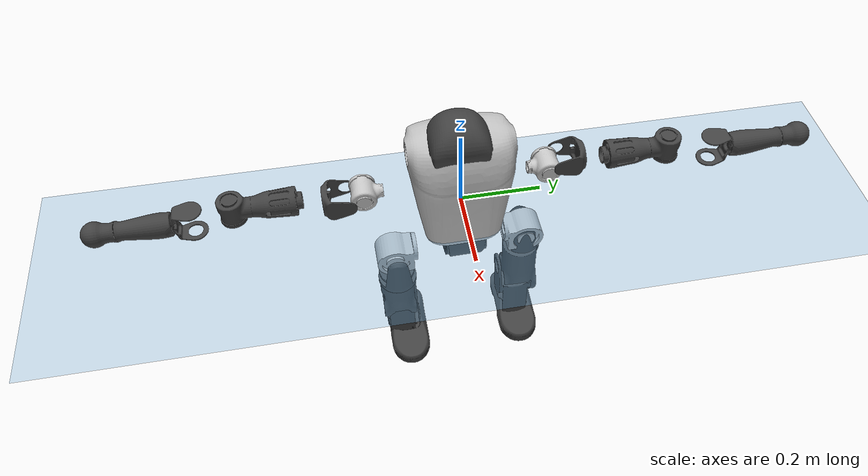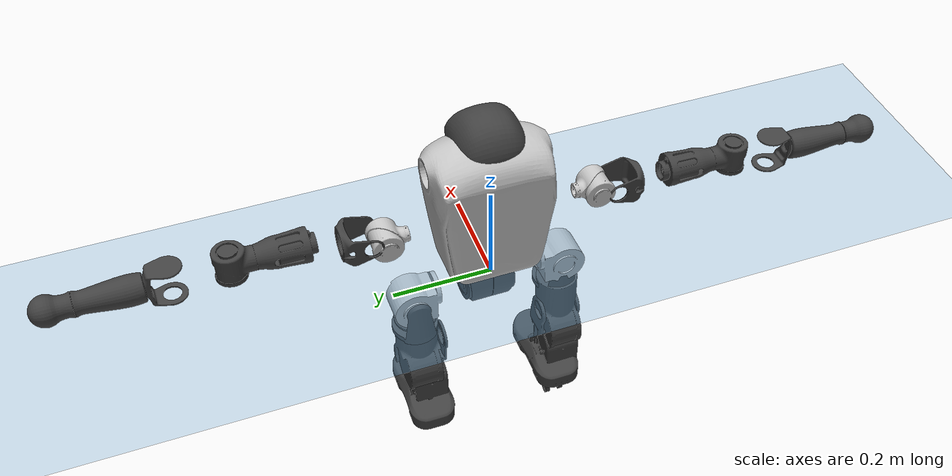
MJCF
<mujoco model="T1">
  <compiler angle="radian" assetdir="assets" balanceinertia="true" inertiafromgeom="false"/>

  <option timestep="0.005" density="1.2" viscosity="2e-05"/>

  <size nkey="1"/>

  <visual>
    <quality shadowsize="8192"/>
    <map shadowclip="0.5"/>
  </visual>

  <default>
    <default class="/">
      <joint armature="0.01" damping="0.01" frictionloss="0.1"/>
      <geom contype="0" conaffinity="0" group="1" solref="-1000 -80"/>
      <site size="0.01 0.005 0.005" group="5"/>
      <general forcelimited="true" biastype="affine" gainprm="25" biasprm="0 -25 -0.6"/>
      <default class="t1">
        <geom rgba="0.25 0.25 0.25 1"/>
        <default class="visual">
          <geom type="mesh" group="2"/>
        </default>
        <default class="collision">
          <geom group="3"/>
        </default>
        <default class="foot">
          <geom size="0.1115 0.05 0.015" type="box" condim="6" group="4" priority="1" solimp="0.015 1 0.015"/>
        </default>
        <default class="reward_collision_sphere">
          <geom group="5" rgba="1 0 0 1"/>
        </default>
      </default>
    </default>
  </default>

  <asset>
    <texture type="skybox" colorspace="auto" name="//unnamed_texture_0" builtin="gradient" rgb1="0.95 0.95 0.95" rgb2="0.95 0.95 0.95" width="100" height="600"/>
    <texture type="2d" colorspace="auto" name="texplane" builtin="checker" rgb1="0.345 0.575 0.748" rgb2="0.345 0.575 0.748" markrgb="1 1 1" width="512" height="512"/>
    <material name="MatPlane" class="/" texture="texplane" texuniform="true" texrepeat="2 2" specular="0.9"/>
    <mesh name="Trunk" class="/" file="Trunk.stl"/>
    <mesh name="H1" class="/" file="H1.stl"/>
    <mesh name="H2" class="/" file="H2.stl"/>
    <mesh name="AL1" class="/" file="AL1.stl"/>
    <mesh name="AL2" class="/" file="AL2.stl"/>
    <mesh name="AL3" class="/" file="AL3.stl"/>
    <mesh name="left_hand_link" class="/" file="left_hand_link.stl"/>
    <mesh name="AR1" class="/" file="AR1.stl"/>
    <mesh name="AR2" class="/" file="AR2.stl"/>
    <mesh name="AR3" class="/" file="AR3.stl"/>
    <mesh name="right_hand_link" class="/" file="right_hand_link.stl"/>
    <mesh name="Waist" class="/" file="Waist.stl"/>
    <mesh name="Hip_Pitch_Left" class="/" file="Hip_Pitch_Left.stl"/>
    <mesh name="Hip_Roll_Left" class="/" file="Hip_Roll_Left.stl"/>
    <mesh name="Hip_Yaw_Left" class="/" file="Hip_Yaw_Left.stl"/>
    <mesh name="Shank_Left" class="/" file="Shank_Left.stl"/>
    <mesh name="Ankle_Cross_Left" class="/" file="Ankle_Cross_Left.stl"/>
    <mesh name="left_foot_link" class="/" file="left_foot_link.stl"/>
    <mesh name="Hip_Pitch_Right" class="/" file="Hip_Pitch_Right.stl"/>
    <mesh name="Hip_Roll_Right" class="/" file="Hip_Roll_Right.stl"/>
    <mesh name="Hip_Yaw_Right" class="/" file="Hip_Yaw_Right.stl"/>
    <mesh name="Shank_Right" class="/" file="Shank_Right.stl"/>
    <mesh name="Ankle_Cross_Right" class="/" file="Ankle_Cross_Right.stl"/>
    <mesh name="right_foot_link" class="/" file="right_foot_link.stl"/>
  </asset>

  <worldbody>
    <geom name="floor" class="/" size="100 100 0.125" type="plane" group="0" material="MatPlane"/>
    <light name="toplight_shadow" class="/" pos="0 0 5" dir="0.0990148 0.0990148 -0.990148" type="directional" ambient="0.04 0.04 0.04" diffuse="0.55 0.55 0.55" specular="0.12 0.12 0.12"/>
    <light name="toplight_fill" class="/" pos="0 0 5" dir="0.0990148 0.0990148 -0.990148" type="directional" castshadow="false" ambient="0.04 0.04 0.04" diffuse="0.3 0.3 0.3" specular="0.08 0.08 0.08"/>
    <body name="trunk" childclass="t1" pos="0.000855974 -0.0116605 0.0160831" quat="0.999964 0.00307878 0.00578191 0.00545274">
      <inertial pos="0.0483587 -0.000145286 0.0503466" quat="0.999963 2.38192e-05 -0.0085808 0.000828905" mass="14.0081" diaginertia="0.0895912 0.953281 0.00260769"/>
      <joint name="//unnamed_joint_0" type="free" armature="0" damping="0" frictionloss="0"/>
      <geom name="//unnamed_geom_1" class="visual" rgba="0.76 0.76 0.76 1" mesh="Trunk"/>
      <geom name="//unnamed_geom_2" class="collision" size="0.077255 0.103007 0.15451" pos="0.0563324 0 0.0612766" type="box"/>
      <geom name="//unnamed_geom_3" class="reward_collision_sphere" size="0.118458" pos="0.0563324 0 0.0510639"/>
      <geom name="//unnamed_geom_4" class="reward_collision_sphere" size="0.015451" pos="0.0563324 0.139459 0"/>
      <geom name="//unnamed_geom_5" class="reward_collision_sphere" size="0.015451" pos="0.0563324 -0.139459 0"/>
      <geom name="//unnamed_geom_6" class="reward_collision_sphere" size="0.015451" pos="0.0563324 0.175554 0.091915"/>
      <geom name="//unnamed_geom_7" class="reward_collision_sphere" size="0.015451" pos="0.0563324 -0.175554 0.091915"/>
      <site name="imu" pos="0.0794109 0.0198149 0.00711017" size="0.0103007"/>
      <camera name="track" pos="0 -3.28138 0" quat="0.707107 0.707107 0 0" mode="trackcom"/>
      <camera name="ego_camera" pos="0.114543 0 0.214468" quat="-0.5 -0.5 0.5 0.5"/>
      <body name="H1" pos="0.046851 -0.000696526 0.111843" quat="0.99997 -0.00625659 -0.00111402 -0.00432955">
        <inertial pos="-0.0140901 -0.0121757 0.0226743" quat="0.771726 -0.00457704 -0.00312322 0.635931" mass="0.38626" diaginertia="0.000142805 0.00201771 5.58546e-06"/>
        <joint name="AAHead_yaw" pos="0 0 0" axis="0.0119139 -0.0119695 0.999857" stiffness="0.00403649" range="-1.21662 1.71124" armature="0.0085367" damping="0.0531135" frictionloss="0.0590238"/>
        <geom name="//unnamed_geom_8" class="visual" mesh="H1"/>
        <body name="H2" pos="0.00669937 -0.00695279 0.0189458" quat="0.999966 0.000229019 0.00828521 -0.00016647">
          <inertial pos="0.00188299 -0.00341463 0.0514611" quat="0.988082 0.106694 -0.0752018 -0.0815732" mass="0.823062" diaginertia="0.00169263 0.0262538 5.94901e-05"/>
          <joint name="Head_pitch" pos="0 0 0" axis="0.0486837 -0.996934 0.0612548" stiffness="0.0474812" range="-0.965519 0.0295521" armature="0.00318252" damping="0" frictionloss="0.0175189"/>
          <geom name="//unnamed_geom_9" class="visual" mesh="H2"/>
          <geom name="//unnamed_geom_10" class="collision" size="0.0824053" pos="0.00938873 0 0.0561703"/>
          <geom name="//unnamed_geom_11" class="reward_collision_sphere" size="0.092706" pos="0.0187775 0 0.0510639"/>
        </body>
      </body>
      <body name="AL1" pos="0.0378232 0.163398 0.1015" quat="0.999998 -0.00161024 0.00105941 -0.000838055">
        <inertial pos="0.0162337 0.0827786 0.00964878" quat="0.543862 0.512319 -0.489005 0.45013" mass="0.654883" diaginertia="0.00103577 0.0136326 1.21294e-05"/>
        <joint name="Left_Shoulder_Pitch" pos="0 0 0" axis="0.0143086 0.999837 0.0109855" range="-3.20472 1.21076" armature="0.008017" damping="0" frictionloss="0.148386"/>
        <geom name="//unnamed_geom_12" class="visual" rgba="0.76 0.76 0.76 1" mesh="AL1"/>
        <body name="AL2" pos="-0.000463383 0.0771358 0.0162948" quat="0.999968 0.00736705 -0.00162998 0.00247127">
          <inertial pos="0.0120008 0.0642041 0.0147098" quat="0.449313 0.514581 -0.507992 0.524659" mass="0.142641" diaginertia="0.000310849 0.00459557 5.5002e-06"/>
          <joint name="Left_Shoulder_Roll" pos="0 0 0" axis="-0.996745 0.0805568 0.00304721" range="-1.59731 1.86672" armature="0.00751213" damping="0" frictionloss="0.18549"/>
          <geom name="//unnamed_geom_13" class="visual" mesh="AL2"/>
          <body name="AL3" pos="0.0164028 0.109126 0.00487851" quat="0.999998 -0.00100204 0.00135824 -0.00109983">
            <inertial pos="0.00559048 0.14044 -0.0149693" quat="0.70735 0.70686 -0.0022509 -0.000247077" mass="1.15668" diaginertia="0.00829107 0.159069 2.4325e-05"/>
            <joint name="Left_Elbow_Pitch" pos="0 0 0" axis="0.0182682 -0.997088 -0.0740338" range="-2.38347 2.25594" armature="0.0145336" damping="0.0155007" frictionloss="0.0568887"/>
            <geom name="//unnamed_geom_14" class="visual" mesh="AL3"/>
            <geom name="//unnamed_geom_15" class="collision" size="0.030902 0.077255" pos="0 0.0820344 0" quat="0.707105 0.707108 0 0" type="cylinder"/>
            <geom name="//unnamed_geom_16" class="reward_collision_sphere" size="0.0370824"/>
            <body name="left_hand_link" pos="0.0118037 0.256897 -0.0170959" quat="0.999992 0.00306967 0.00272311 0.000151939">
              <inertial pos="0.000493774 0.170285 -0.0123929" quat="0.712332 0.701763 0.00683861 0.00804585" mass="0.314063" diaginertia="0.00566594 0.064827 5.93305e-06"/>
              <joint name="Left_Elbow_Yaw" pos="0 0 0" axis="-0.0639878 -0.0370661 0.997262" stiffness="0.063232" range="-2.59151 -0.0471595" armature="0.0084537" damping="0" frictionloss="0.043796"/>
              <geom name="//unnamed_geom_17" class="visual" mesh="left_hand_link"/>
              <geom name="//unnamed_geom_18" class="collision" size="0.030902 0.0901309" pos="0 0.213289 0" quat="0.707105 0.707108 0 0" type="cylinder"/>
              <geom name="//unnamed_geom_19" class="reward_collision_sphere" size="0.0515033"/>
              <geom name="//unnamed_geom_20" class="reward_collision_sphere" size="0.0360523" pos="0 0.180476 0"/>
              <geom name="//unnamed_geom_21" class="reward_collision_sphere" size="0.0360523" pos="0 0.352748 0"/>
            </body>
          </body>
        </body>
      </body>
      <body name="AR1" pos="0.0407073 -0.177997 0.0975718" quat="0.999969 0.000841684 0.00376649 -0.00688506">
        <inertial pos="-0.00120173 -0.0643817 -0.00620529" quat="0.534372 0.494689 -0.509571 0.458332" mass="0.658449" diaginertia="0.00128819 0.0167037 1.14214e-05"/>
        <joint name="Right_Shoulder_Pitch" pos="0 0 0" axis="0.035613 -0.999364 0.00175162" stiffness="0.0729684" range="-1.23007 3.07626" armature="0.0141473" damping="0.0801201" frictionloss="0.0818733"/>
        <geom name="//unnamed_geom_22" class="visual" rgba="0.76 0.76 0.76 1" mesh="AR1"/>
        <body name="AR2" pos="0.00200264 -0.084699 -0.00742932" quat="0.999984 0.0039628 0.00389813 0.00115386">
          <inertial pos="0.0123805 -0.0629037 -0.0120406" quat="0.505785 0.487411 -0.520691 0.485277" mass="0.206083" diaginertia="0.000229283 0.00434082 7.23209e-06"/>
          <joint name="Right_Shoulder_Roll" pos="0 0 0" axis="-0.999985 -0.00539892 3.93185e-05" stiffness="0.0164135" range="-1.87914 1.54579" armature="0.00931098" damping="0" frictionloss="0.0273361"/>
          <geom name="//unnamed_geom_23" class="visual" mesh="AR2"/>
          <body name="AR3" pos="-0.00623648 -0.113354 0.00763915" quat="0.999994 0.00033081 -0.0012376 -0.00321298">
            <inertial pos="0.0166003 -0.141989 -0.00624641" quat="0.711099 0.700364 -0.00256276 0.0618208" mass="0.832652" diaginertia="0.0100443 0.166979 2.13805e-05"/>
            <joint name="Right_Elbow_Pitch" pos="0 0 0" axis="-0.0196995 0.998694 0.0471322" stiffness="0.0862105" range="-2.25716 2.47007" armature="0.0178128" damping="0.0181999" frictionloss="0.1236"/>
            <geom name="//unnamed_geom_24" class="visual" mesh="AR3"/>
            <geom name="//unnamed_geom_25" class="collision" size="0.030902 0.077255" pos="0 -0.0820344 0" quat="0.707105 0.707108 0 0" type="cylinder"/>
            <geom name="//unnamed_geom_26" class="reward_collision_sphere" size="0.0370824"/>
            <body name="right_hand_link" pos="0.00403689 -0.23906 -0.0166415" quat="1 -1.09729e-05 2.65713e-05 4.74717e-06">
              <inertial pos="0.0117818 -0.192799 0.00765038" quat="0.707826 0.70546 -0.0352231 0.00829347" mass="0.397205" diaginertia="0.00598061 0.120021 7.35757e-06"/>
              <joint name="Right_Elbow_Yaw" pos="0 0 0" axis="0.0365864 0.000882901 0.99933" stiffness="0.0364313" range="0.0745715 2.45108" armature="0.0148512" damping="0.0521994" frictionloss="0.0861712"/>
              <geom name="//unnamed_geom_27" class="visual" mesh="right_hand_link"/>
              <geom name="//unnamed_geom_28" class="collision" size="0.030902 0.0901309" pos="0 -0.213289 0" quat="0.707105 0.707108 0 0" type="cylinder"/>
              <geom name="//unnamed_geom_29" class="reward_collision_sphere" size="0.0515033"/>
              <geom name="//unnamed_geom_30" class="reward_collision_sphere" size="0.0360523" pos="0 -0.180476 0"/>
              <geom name="//unnamed_geom_31" class="reward_collision_sphere" size="0.0360523" pos="0 -0.352748 0"/>
            </body>
          </body>
        </body>
      </body>
      <body name="Waist" pos="0.0578425 0.00540809 -0.0707308" quat="1 -0.000175242 -1.30255e-05 3.33771e-06">
        <inertial pos="-0.0083459 -0.00231377 -0.00499862" quat="0.982502 0.00224194 -0.185908 0.0110836" mass="2.62228" diaginertia="0.00413827 0.0470648 0.000173579"/>
        <joint name="Waist" pos="0 0 0" axis="0.0295352 -0.0155773 0.999442" stiffness="0.0560894" range="-1.31406 1.36781" armature="0.0101272" damping="0.0878035" frictionloss="0.105792"/>
        <geom name="//unnamed_geom_32" class="visual" mesh="Waist"/>
        <body name="Hip_Pitch_Left" pos="-0.00257648 0.156704 -0.014731" quat="1 -0.000155574 -3.57432e-05 -2.16431e-06">
          <inertial pos="0.0121537 -0.0143833 0.00775563" quat="0.976179 0.214875 0.00698678 -0.0292247" mass="0.900255" diaginertia="0.00112991 0.0167093 4.06403e-05"/>
          <joint name="Left_Hip_Pitch" pos="0 0 0" axis="0.0260527 0.998493 0.0483045" stiffness="0.0689403" range="-2.07678 1.52469" armature="0.0109001" damping="0.0802211" frictionloss="0.176328"/>
          <geom name="//unnamed_geom_33" class="visual" rgba="0.76 0.76 0.76 1" mesh="Hip_Pitch_Left"/>
          <body name="Hip_Roll_Left" pos="-0.0093445 -0.00144437 -0.010214" quat="1 0.000111825 0.000429548 0.000284745">
            <inertial pos="0.00405671 0.00579028 -0.0277498" quat="0.706503 -0.00346475 0.0404937 0.706542" mass="0.370516" diaginertia="0.00114637 0.0131264 1.46392e-05"/>
            <joint name="Left_Hip_Roll" pos="0 0 0" axis="-0.999231 0.0100642 0.0378866" range="-1.8203 0.205775" armature="0.0108618" damping="0" frictionloss="0.167214"/>
            <geom name="//unnamed_geom_34" class="visual" mesh="Hip_Roll_Left"/>
            <geom name="//unnamed_geom_35" class="reward_collision_sphere" size="0.0566537"/>
            <body name="Hip_Yaw_Left" pos="0.0133836 -0.00534206 -0.0589441" quat="1 -0.000232759 -4.19633e-05 -0.000476216">
              <inertial pos="-0.0124387 -0.00185761 -0.0299016" quat="0.712297 -0.00159699 -0.0398762 0.700743" mass="2.66107" diaginertia="0.0142576 0.266138 8.6571e-05"/>
              <joint name="Left_Hip_Yaw" pos="0 0 0" axis="0.0060149 0.064324 -0.997911" stiffness="0.087333" range="-0.980571 0.745228" armature="0.0172689" damping="0.0660071" frictionloss="0.179583"/>
              <geom name="//unnamed_geom_36" class="visual" mesh="Hip_Yaw_Left"/>
              <geom name="//unnamed_geom_37" class="collision" size="0.0515033 0.0824053" type="cylinder"/>
              <body name="Shank_Left" pos="-0.00209227 -0.0155286 -0.0827113" quat="0.999965 0.00208236 -0.00734402 -0.00334423">
                <inertial pos="-0.0155999 0.0179555 -0.0551455" quat="0.996071 0.0145827 -0.0842894 0.0229249" mass="1.69363" diaginertia="0.0183714 0.374986 5.45899e-05"/>
                <joint name="Left_Knee_Pitch" pos="0 0 0" axis="0.0285034 0.998685 0.0426089" range="0.132944 2.34628" armature="0.00392374" damping="0.0426871" frictionloss="0.182344"/>
                <geom name="//unnamed_geom_38" class="visual" mesh="Shank_Left"/>
                <geom name="//unnamed_geom_39" class="collision" size="0.0515033 0.077255" pos="0 0 -0.0612766" type="cylinder"/>
                <geom name="//unnamed_geom_40" class="reward_collision_sphere" size="0.0669543"/>
                <body name="Ankle_Cross_Left" pos="0.0165308 0.00813775 -0.147485" quat="1 9.96781e-07 -4.68197e-05 -0.000109184">
                  <inertial pos="-0.0071129 0.00367153 -0.00684899" quat="0.380822 0.532639 0.598509 0.461581" mass="0.0654247" diaginertia="2.08508e-05 0.000290788 3.53274e-07"/>
                  <joint name="Left_Ankle_Pitch" pos="0 0 0" axis="-0.0141163 0.998418 0.0544318" stiffness="0.00101176" range="-0.892035 0.644026" armature="0.0102311" damping="0" frictionloss="0.111311"/>
                  <geom name="//unnamed_geom_41" class="visual" mesh="Ankle_Cross_Left"/>
                  <body name="left_foot_link" pos="-0.0127143 -0.00214151 -0.0105801" quat="0.999983 -0.00254184 0.000495219 -0.00513472">
                    <inertial pos="-0.00299016 0.000411047 -0.0220001" quat="0.00107644 0.620597 -0.000935951 0.784128" mass="0.943122" diaginertia="0.00250904 0.0324817 9.44226e-05"/>
                    <joint name="Left_Ankle_Roll" pos="0 0 0" axis="-0.998518 -0.012917 0.0528681" range="-0.195223 0.256711" armature="0.0100538" damping="0" frictionloss="0.101732"/>
                    <geom name="//unnamed_geom_42" class="visual" mesh="left_foot_link"/>
                    <geom name="left_foot" class="foot" size="0.0485798 0.0207709 0.00992008" pos="0.00938873 0 -0.00765958"/>
                    <geom name="//unnamed_geom_44" class="reward_collision_sphere" size="0.0535635" pos="0.00938873 0 -0.00765958"/>
                    <geom name="//unnamed_geom_45" class="reward_collision_sphere" size="0.030902" pos="0.089193 -0.0377358 -0.00765958"/>
                    <geom name="//unnamed_geom_46" class="reward_collision_sphere" size="0.030902" pos="-0.0657211 -0.0377358 -0.00765958"/>
                    <site name="left_foot" class="foot" pos="0.00938873 0 -0.00765958" size="0.0103007"/>
                  </body>
                </body>
              </body>
            </body>
          </body>
        </body>
        <body name="Hip_Pitch_Right" pos="0.012979 -0.175243 -0.0147197" quat="0.999969 -0.00348034 0.00680839 -0.00191883">
          <inertial pos="0.00191512 0.0291939 -0.0158203" quat="0.963972 -0.262554 0.0409819 -0.0119674" mass="1.01685" diaginertia="0.00114005 0.015887 3.46565e-05"/>
          <joint name="Right_Hip_Pitch" pos="0 0 0" axis="0.0103714 -0.999881 0.0114571" stiffness="0.054291" range="-1.79679 2.09247" armature="0.00954778" damping="0" frictionloss="0.0180452"/>
          <geom name="//unnamed_geom_47" class="visual" rgba="0.76 0.76 0.76 1" mesh="Hip_Pitch_Right"/>
          <body name="Hip_Roll_Right" pos="0.0150738 0.00289608 -0.0235453" quat="0.999999 0.000448017 0.000777688 0.000933841">
            <inertial pos="0.00896368 -0.000304565 -0.0370775" quat="0.707907 -0.00869001 -0.00542171 0.706231" mass="0.421562" diaginertia="0.00156568 0.0162813 1.62523e-05"/>
            <joint name="Right_Hip_Roll" pos="0 0 0" axis="-0.998717 0.0447553 -0.0237063" range="-0.43425 1.73585" armature="0.0105878" damping="0.0572474" frictionloss="0.0314024"/>
            <geom name="//unnamed_geom_48" class="visual" mesh="Hip_Roll_Right"/>
            <geom name="//unnamed_geom_49" class="reward_collision_sphere" size="0.0566537"/>
            <body name="Hip_Yaw_Right" pos="-0.0134759 -0.00014539 -0.0561152" quat="1 -0.000114435 0.000188977 -6.70849e-05">
              <inertial pos="0.00745079 -0.0175731 -0.051425" quat="0.716501 -0.0386064 -0.0238628 0.696108" mass="3.17528" diaginertia="0.0185379 0.330806 0.000121124"/>
              <joint name="Right_Hip_Yaw" pos="0 0 0" axis="-0.0154914 0.0382947 -0.999146" stiffness="0.0278803" range="-1.11011 0.928737" armature="0.0111427" damping="0" frictionloss="0.0994947"/>
              <geom name="//unnamed_geom_50" class="visual" mesh="Hip_Yaw_Right"/>
              <geom name="//unnamed_geom_51" class="collision" size="0.0515033 0.0824053" type="cylinder"/>
              <body name="Shank_Right" pos="-0.00986769 0.00265957 -0.0851431" quat="0.999999 0.00108995 -0.00025579 0.000863426">
                <inertial pos="0.0125725 -0.00840574 -0.050641" quat="0.997636 -0.0591863 -0.0201924 0.0284775" mass="2.00269" diaginertia="0.0332303 0.420615 7.92563e-05"/>
                <joint name="Right_Knee_Pitch" pos="0 0 0" axis="-0.000478945 -0.999989 -0.00476616" range="-2.33564 0.300815" armature="0.00995102" damping="0" frictionloss="0.166059"/>
                <geom name="//unnamed_geom_52" class="visual" mesh="Shank_Right"/>
                <geom name="//unnamed_geom_53" class="collision" size="0.0515033 0.077255" pos="0 0 -0.0612766" type="cylinder"/>
                <geom name="//unnamed_geom_54" class="reward_collision_sphere" size="0.0669543"/>
                <body name="Ankle_Cross_Right" pos="0.010298 0.00947342 -0.128364" quat="0.999992 0.000490655 0.00141181 -0.00371192">
                  <inertial pos="-0.00125669 0.010245 -0.000850367" quat="0.404951 0.584477 0.539467 0.450973" mass="0.0984621" diaginertia="2.2664e-05 0.00035083 4.28979e-07"/>
                  <joint name="Right_Ankle_Pitch" pos="0 0 0" axis="-0.000754327 -0.999998 0.00182012" range="-0.708394 0.639781" armature="0.0125768" damping="0" frictionloss="0.0992434"/>
                  <geom name="//unnamed_geom_55" class="visual" mesh="Ankle_Cross_Right"/>
                  <body name="right_foot_link" pos="0.00481474 0.00530709 -0.0175821" quat="0.999999 -0.000810201 0.000608201 0.000134025">
                    <inertial pos="-0.00373578 0.00843579 -0.0216095" quat="0.0237561 0.624916 0.00532024 0.780312" mass="0.796152" diaginertia="0.00199844 0.0323619 8.23852e-05"/>
                    <joint name="Right_Ankle_Roll" pos="0 0 0" axis="-0.999996 0.00103877 0.00262703" range="-0.303719 0.395265" armature="0.00835592" damping="0.0462162" frictionloss="0.0110587"/>
                    <geom name="//unnamed_geom_56" class="visual" mesh="right_foot_link"/>
                    <geom name="right_foot" class="foot" size="0.0610605 0.0850202 0.00508469" pos="0.00938873 0 -0.00765958"/>
                    <geom name="//unnamed_geom_58" class="reward_collision_sphere" size="0.0412027"/>
                    <geom name="//unnamed_geom_59" class="reward_collision_sphere" size="0.030902" pos="0.00938873 0 -0.00765958"/>
                    <geom name="//unnamed_geom_60" class="reward_collision_sphere" size="0.030902" pos="0.089193 0.0377358 -0.00765958"/>
                    <geom name="//unnamed_geom_61" class="reward_collision_sphere" size="0.030902" pos="-0.0657211 0.0377358 -0.00765958"/>
                    <site name="right_foot" class="foot" pos="0.00938873 0 -0.00765958" size="0.0103007"/>
                  </body>
                </body>
              </body>
            </body>
          </body>
        </body>
      </body>
    </body>
  </worldbody>

  <contact>
    <pair class="/" geom1="floor" geom2="left_foot" name="//unnamed_contact_0"/>
    <pair class="/" geom1="floor" geom2="right_foot" name="//unnamed_contact_1"/>
  </contact>

  <actuator>
    <general name="AAHead_yaw" class="/" joint="AAHead_yaw" forcerange="-7.14367 7.14367" gainprm="17.1747" biasprm="0 -17.1747 -0.604212"/>
    <general name="Head_pitch" class="/" joint="Head_pitch" forcerange="-4.64799 4.64799" gainprm="17.1747" biasprm="0 -17.1747 -0.604212"/>
    <general name="Left_Shoulder_Pitch" class="/" joint="Left_Shoulder_Pitch" forcerange="-24.9009 24.9009" gainprm="17.1747" biasprm="0 -17.1747 -0.604212"/>
    <general name="Left_Shoulder_Roll" class="/" joint="Left_Shoulder_Roll" forcerange="-13.7498 13.7498" gainprm="17.1747" biasprm="0 -17.1747 -0.604212"/>
    <general name="Left_Elbow_Pitch" class="/" joint="Left_Elbow_Pitch" forcerange="-28.6295 28.6295" gainprm="17.1747" biasprm="0 -17.1747 -0.604212"/>
    <general name="Left_Elbow_Yaw" class="/" joint="Left_Elbow_Yaw" forcerange="-18.1365 18.1365" gainprm="17.1747" biasprm="0 -17.1747 -0.604212"/>
    <general name="Right_Shoulder_Pitch" class="/" joint="Right_Shoulder_Pitch" forcerange="-14.4678 14.4678" gainprm="17.1747" biasprm="0 -17.1747 -0.604212"/>
    <general name="Right_Shoulder_Roll" class="/" joint="Right_Shoulder_Roll" forcerange="-10.8738 10.8738" gainprm="17.1747" biasprm="0 -17.1747 -0.604212"/>
    <general name="Right_Elbow_Pitch" class="/" joint="Right_Elbow_Pitch" forcerange="-18.8154 18.8154" gainprm="17.1747" biasprm="0 -17.1747 -0.604212"/>
    <general name="Right_Elbow_Yaw" class="/" joint="Right_Elbow_Yaw" forcerange="-16.4824 16.4824" gainprm="17.1747" biasprm="0 -17.1747 -0.604212"/>
    <general name="Waist" class="/" joint="Waist" forcerange="-34.306 34.306" gainprm="17.1747" biasprm="0 -17.1747 -0.604212"/>
    <general name="Left_Hip_Pitch" class="/" joint="Left_Hip_Pitch" forcerange="-46.7414 46.7414" gainprm="17.1747" biasprm="0 -17.1747 -0.604212"/>
    <general name="Left_Hip_Roll" class="/" joint="Left_Hip_Roll" forcerange="-11.7542 11.7542" gainprm="17.1747" biasprm="0 -17.1747 -0.604212"/>
    <general name="Left_Hip_Yaw" class="/" joint="Left_Hip_Yaw" forcerange="-44.0275 44.0275" gainprm="17.1747" biasprm="0 -17.1747 -0.604212"/>
    <general name="Left_Knee_Pitch" class="/" joint="Left_Knee_Pitch" forcerange="-24.8719 24.8719" gainprm="17.1747" biasprm="0 -17.1747 -0.604212"/>
    <general name="Left_Ankle_Pitch" class="/" joint="Left_Ankle_Pitch" forcerange="-29.1818 29.1818" gainprm="17.1747" biasprm="0 -17.1747 -0.604212"/>
    <general name="Left_Ankle_Roll" class="/" joint="Left_Ankle_Roll" forcerange="-21.5424 21.5424" gainprm="17.1747" biasprm="0 -17.1747 -0.604212"/>
    <general name="Right_Hip_Pitch" class="/" joint="Right_Hip_Pitch" forcerange="-72.3602 72.3602" gainprm="17.1747" biasprm="0 -17.1747 -0.604212"/>
    <general name="Right_Hip_Roll" class="/" joint="Right_Hip_Roll" forcerange="-36.2136 36.2136" gainprm="17.1747" biasprm="0 -17.1747 -0.604212"/>
    <general name="Right_Hip_Yaw" class="/" joint="Right_Hip_Yaw" forcerange="-17.4854 17.4854" gainprm="17.1747" biasprm="0 -17.1747 -0.604212"/>
    <general name="Right_Knee_Pitch" class="/" joint="Right_Knee_Pitch" forcerange="-60.9629 60.9629" gainprm="17.1747" biasprm="0 -17.1747 -0.604212"/>
    <general name="Right_Ankle_Pitch" class="/" joint="Right_Ankle_Pitch" forcerange="-20.2408 20.2408" gainprm="17.1747" biasprm="0 -17.1747 -0.604212"/>
    <general name="Right_Ankle_Roll" class="/" joint="Right_Ankle_Roll" forcerange="-17.3654 17.3654" gainprm="17.1747" biasprm="0 -17.1747 -0.604212"/>
  </actuator>

  <sensor>
    <gyro site="imu" name="imu_angular_velocity"/>
    <velocimeter site="imu" name="imu_linear_velocity"/>
    <framelinvel objtype="site" objname="left_foot" name="left_foot_global_linear_velocity"/>
    <framelinvel objtype="site" objname="right_foot" name="right_foot_global_linear_velocity"/>
  </sensor>

  <keyframe>
    <key name="home" qpos="0 0 0.6385 1 0 0 0 0 0 0 1.4 0 -0.4 0 -1.4 0 0.4 0 -0.4 0 0 0.8 -0.4 0 0.4 0 0 -0.8 0.4 0"/>
  </keyframe>
</mujoco>
